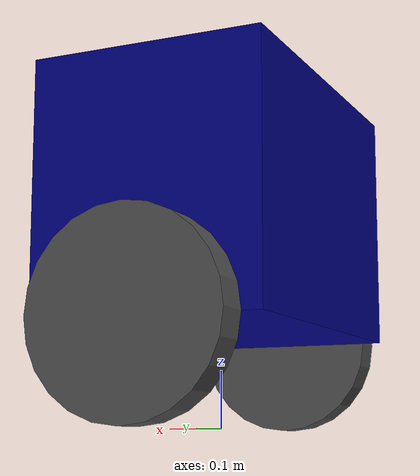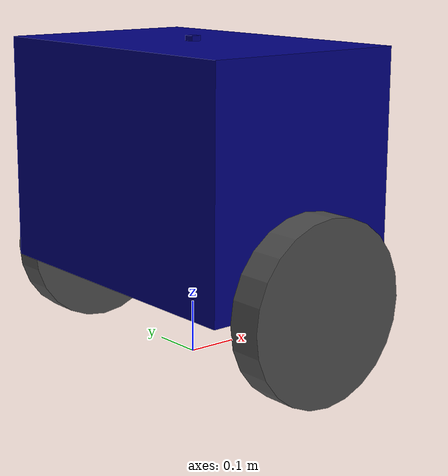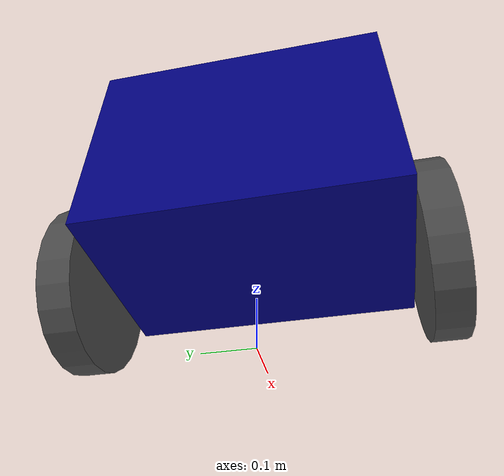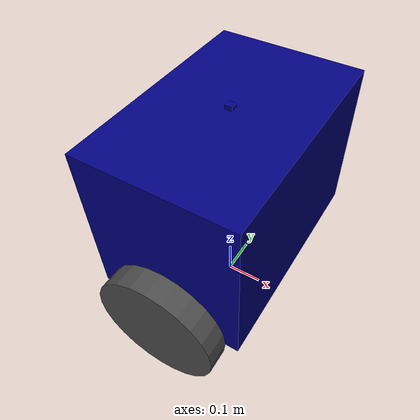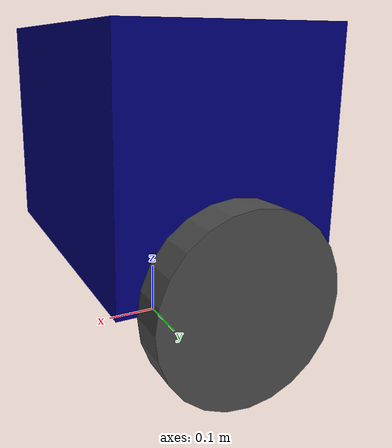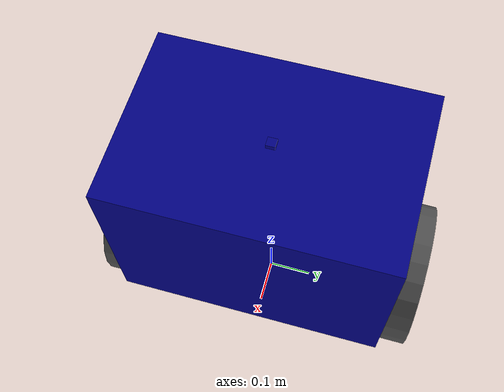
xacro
<?xml version="1.0"?>
<robot name="balancer_bot" xmlns:xacro="http://www.ros.org/wiki/xacro">

    <xacro:include filename="common_properties.xacro" />
    <xacro:include filename="mobile_base.xacro" />
    <xacro:include filename="mobile_base_gazebo.xacro" />
    <xacro:include filename="imu.xacro"/>
</robot>

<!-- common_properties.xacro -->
<robot xmlns:xacro="http://www.ros.org/wiki/xacro">
    <material name="green">
        <color rgba="0.0 0.5 0.0 1"/>
    </material>
    <material name="blue">
        <color rgba="0.0 0.0 0.5 1"/>
    </material>
    <material name="red">
        <color rgba="1.0 0.0 0.0 1"/>
    </material>
    <material name="grey">
        <color rgba="0.3 0.3 0.3 1"/>
    </material>

    <xacro:macro name="box_inertia" params="m l w h xyz rpy">
        <inertial>
            <origin xyz="${xyz}" rpy="${rpy}"/>
            <mass value="${m}"/>
            <inertia ixx="${(m/12)*(l*l+w*w)}" ixy="0.0" ixz="0.0" iyy="${(m/12)*(h*h+l*l)}" iyz="0.0" izz="${(m/12)*(w*w+l*l)}"/>
        </inertial>
    </xacro:macro>

    <xacro:macro name="sphere_inertia" params="m r xyz rpy">
        <inertial>
            <origin xyz="${xyz}" rpy="${rpy}"/>
            <mass value="${m}"/>
            <inertia ixx="${(2/5)*m*r*r}" ixy="0.0" ixz="0.0"
                    iyy="${(2/5)*m*r*r}" iyz="0.0"
                    izz="${(2/5)*m*r*r}"/>
        </inertial>
    </xacro:macro>

    <xacro:macro name="cylinder_inertia" params="m r h xyz rpy">
        <inertial>
            <origin xyz="${xyz}" rpy="${rpy}"/>
            <mass value="${m}"/>
            <inertia ixx="${(1/12)*m*(3*r*r+h*h)}" ixy="0.0" ixz="0.0"
                    iyy="${(1/12)*m*(3*r*r+h*h)}" iyz="0.0"
                    izz="${(1/2)*m*r*r}"/>
        </inertial>
    </xacro:macro>

</robot>

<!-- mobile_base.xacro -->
<robot xmlns:xacro="http://www.ros.org/wiki/xacro">

    <xacro:property name="base_length" value="0.4"/>
    <xacro:property name="base_width" value="0.60"/>
    <xacro:property name="base_height" value="0.432"/>
    <xacro:property name="wheel_radius" value="0.166"/>
    <xacro:property name="wheel_length" value="0.063"/>

    <xacro:macro name="wheel_link" params="prefix">
        <link name="${prefix}_wheel_link">
            <visual>
                <geometry>
                    <cylinder radius="${wheel_radius}" length="${wheel_length}"/>
                </geometry>
                <origin xyz="0.0 0.0 0.0" rpy="0.0 0.0 0.0"/>
                <material name="grey"/>
            </visual>
            <collision>
                <geometry>
                    <cylinder radius="${wheel_radius}" length="${wheel_length}"/>
                </geometry>
                <origin xyz="0.0 0.0 0.0" rpy="0.0 0.0 0.0"/>
            </collision>
            <xacro:cylinder_inertia m="1.0" r="${2*wheel_radius}" h="${2*wheel_length}" xyz="0 0 0" rpy="0 0 0" />
        </link>
    </xacro:macro>

    <link name="base_foot_print"/>

    <joint name="base_foot_print_base_joint" type="fixed">
        <parent link="base_foot_print"/>
        <child link="base_link"/>
        <origin xyz="0.0 0.0 ${wheel_radius}" rpy="0.0 0.0 0.0"/>
    </joint>

    <link name="base_link">
        <visual>
            <geometry>
                <box size="${base_length} ${base_width} ${base_height}"/>
            </geometry>
            <origin xyz="0.0 0.0 ${base_height/2.0}" rpy="0.0 0.0 0.0"/>
            <material name='blue'/>
        </visual>
        <collision>
            <geometry>
                <box size="${base_length} ${base_width} ${base_height}"/>
            </geometry>
            <origin xyz="0.0 0.0 ${base_height/2.0}" rpy="0.0 0.0 0.0"/>
        </collision>
        <xacro:box_inertia m="5.0" l="${2*base_length}" w="${2*base_width}" h="${2*base_height}"
                            xyz="0.0 0.0 ${base_height/2.0}" rpy="0.0 0.0 0.0"/>
    </link>

    <xacro:wheel_link prefix="right"/>

    <joint name="base_right_wheel_joint" type="continuous">
        <parent link="base_link"/>
        <child link="right_wheel_link"/>
        <origin xyz="0 ${-base_width/2.0-wheel_length/2.0} 0" rpy="${3*pi / 2.0} 0 0"/>
        <axis xyz="0 0 1"/>

    </joint>

    <xacro:wheel_link prefix="left"/>

    <joint name="base_left_wheel_joint" type="continuous">
        <parent link="base_link"/>
        <child link="left_wheel_link"/>
        <origin xyz="0 ${base_width/2+wheel_length/2} 0" rpy="${3*pi / 2.0} 0 0"/>
        <axis xyz="0 0 1"/>

    </joint>

</robot>

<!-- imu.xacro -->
<robot xmlns:xacro="http://www.ros.org/wiki/xacro">

    <!-- Define properties for IMU sensor dimensions -->
    <xacro:property name="imu_length" value="0.02"/>
    <xacro:property name="imu_width" value="0.02"/>
    <xacro:property name="imu_height" value="0.01"/>

    <!-- Xacro macro to define an IMU sensor -->
    <xacro:macro name="imu_sensor" params="sensor_name link_xyz link_rpy">
        <!-- Define the sensor link -->
        <link name="${sensor_name}_link">
            <visual>
                <geometry>
                    <box size="${imu_length} ${imu_width} ${imu_height}"/>
                </geometry>
                <material name="blue"/>
            </visual>
            <collision>
                <geometry>
                    <box size="${imu_length} ${imu_width} ${imu_height}"/>
                </geometry>
            </collision>
            <inertial>
                <mass value="0.05"/>
                <origin xyz="0 0 0" rpy="0 0 0"/>
                <inertia ixx="1e-5" ixy="0" ixz="0" iyy="1e-5" iyz="0" izz="1e-5"/>
            </inertial>
        </link>

        <!-- Define the joint attaching the sensor to the robot -->
        <joint name="base_${sensor_name}_joint" type="fixed">
            <parent link="base_link"/>  <!-- Adjust the parent link as necessary -->
            <child link="${sensor_name}_link"/>
            <origin xyz="${link_xyz}" rpy="${link_rpy}"/>
        </joint>

        <!-- Gazebo plugin for the IMU sensor -->
        <gazebo reference="${sensor_name}_link">
            <sensor name="${sensor_name}" type="imu">
                <always_on>true</always_on>
                <update_rate>100</update_rate>
                <imu>
                    <topic>${sensor_name}_data</topic>
                    <frame_name>${sensor_name}_link</frame_name>
                </imu>
                <plugin name="${sensor_name}_plugin" filename="libgazebo_ros_imu_sensor.so">
                    <ros>
                        <namespace>/</namespace>
                        <remapping>~/imu:=/${sensor_name}_data</remapping>
                    </ros>
                    <body_name>${sensor_name}_link</body_name>
                </plugin>
            </sensor>
        </gazebo>
    </xacro:macro>

    <!-- Instantiate the IMU sensor -->
    <xacro:imu_sensor sensor_name="imu_sensor" link_xyz="0 0 ${base_height+imu_height/2.0}" link_rpy="0 0 0"/>

</robot>
